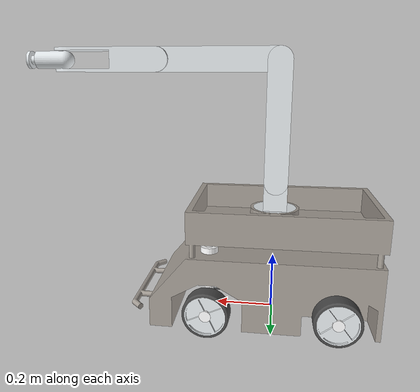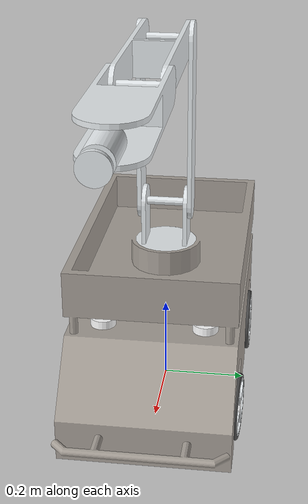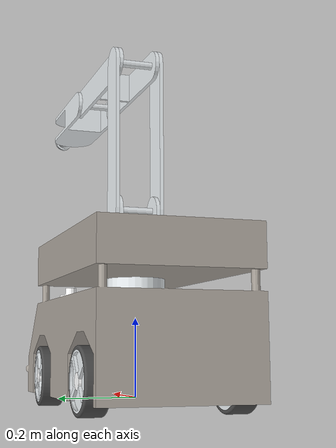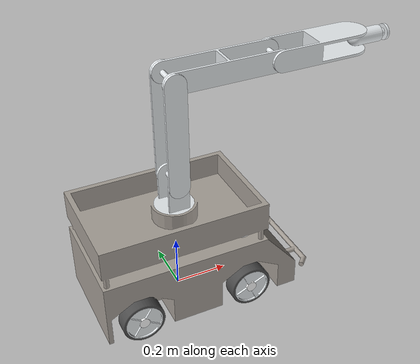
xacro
<?xml version="1.0"?>
<!-- Name your robot here -->
<robot name ="navbot" xmlns:xacro="http://wiki.ros.org/xacro">
	<!-- Include Robot's urdf filepath -->
	<xacro:include filename="$(find navbot)/urdf/navbot.urdf" />

	<!-- Add gazebo plugin for control here -->
	<gazebo>
		<plugin name="gazebo_ros_control" filename="libgazebo_ros_control.so">
			<robotNamespace>/navbot_control</robotNamespace>
			<robotSimType>gazebo_ros_control/DefaultRobotHWSim</robotSimType>
			<legacyModeNS>true</legacyModeNS>
		</plugin>
	</gazebo>
</robot>

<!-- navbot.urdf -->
<robot
  name="navbot">
  <link
    name="dummy_link">
  </link>
  <joint
    name="dummy_joint"
    type="fixed">
    <parent
      link="dummy_link"/>
    <child
      link="base_link"/>
  </joint>
  <link
    name="base_link">
    <inertial>
      <origin
        xyz="-0.00574243083162546 5.54009732590054E-09 0.169890254484883"
        rpy="0 0 0" />
      <mass
        value="422.822492059331" />
      <inertia
        ixx="9.55044189975523"
        ixy="-8.55585388996705E-07"
        ixz="0.740883638540849"
        iyy="22.1577975837696"
        iyz="-2.09095170490729E-07"
        izz="23.9989027352956" />
    </inertial>
    <visual>
      <origin
        xyz="0 0 0"
        rpy="0 0 0" />
      <geometry>
        <mesh
          filename="package://navbot/meshes/base_link.STL" />
      </geometry>
      <material
        name="">
        <color
          rgba="0.647058823529412 0.619607843137255 0.588235294117647 1" />
      </material>
    </visual>
    <collision>
      <origin
        xyz="0 0 0"
        rpy="0 0 0" />
      <geometry>
        <mesh
          filename="package://navbot/meshes/base_link.STL" />
      </geometry>
    </collision>
  </link>
  <gazebo reference="base_link">
    <material>Gazebo/Yellow</material>
  </gazebo>
  <link
    name="link_rear_axle">
    <inertial>
      <origin
        xyz="2.77555756156289E-17 0 7.26920691213685E-17"
        rpy="0 0 0" />
      <mass
        value="0.536835352645424" />
      <inertia
        ixx="0.00813515260567443"
        ixy="0"
        ixz="1.55401301601405E-21"
        iyy="0.00813515260567443"
        iyz="-9.04327428095806E-21"
        izz="6.33297955073898E-05" />
    </inertial>
    <visual>
      <origin
        xyz="0 0 0"
        rpy="0 0 0" />
      <geometry>
        <mesh
          filename="package://navbot/meshes/link_rear_axle.STL" />
      </geometry>
      <material
        name="">
        <color
          rgba="1 1 1 1" />
      </material>
    </visual>
    <collision>
      <origin
        xyz="0 0 0"
        rpy="0 0 0" />
      <geometry>
        <mesh
          filename="package://navbot/meshes/link_rear_axle.STL" />
      </geometry>
    </collision>
  </link>
  <gazebo reference="link_rear_axle">
    <material>Gazebo/Yellow</material>
  </gazebo>
  <joint
    name="joint_rear_axle"
    type="continuous">
    <origin
      xyz="-0.215 0 0.05"
      rpy="-1.5708 -0.40054 3.1416" />
    <parent
      link="base_link" />
    <child
      link="link_rear_axle" />
    <axis
      xyz="0 0 1" />
  </joint>
  <link
    name="link_rear_left_rim">
    <inertial>
      <origin
        xyz="0.04759900699422 2.77555756156289E-17 0"
        rpy="0 0 0" />
      <mass
        value="2.17989779228773" />
      <inertia
        ixx="0.00563923087829547"
        ixy="1.40523402635537E-19"
        ixz="3.57695924424167E-19"
        iyy="0.00338250938278668"
        iyz="1.51788304147971E-18"
        izz="0.00338250938278667" />
    </inertial>
    <visual>
      <origin
        xyz="0 0 0"
        rpy="0 0 0" />
      <geometry>
        <mesh
          filename="package://navbot/meshes/link_rear_left_rim.STL" />
      </geometry>
      <material
        name="">
        <color
          rgba="0.898039215686275 0.917647058823529 0.929411764705882 1" />
      </material>
    </visual>
    <collision>
      <origin
        xyz="0 0 0"
        rpy="0 0 0" />
      <geometry>
        <mesh
          filename="package://navbot/meshes/link_rear_left_rim.STL" />
      </geometry>
    </collision>
  </link>
  <gazebo reference="link_rear_left_rim">
    <material>Gazebo/Yellow</material>
  </gazebo>
  <joint
    name="joint_rear_left_rim"
    type="fixed">
    <origin
      xyz="0 0 -0.1275"
      rpy="1.3999 1.5708 0" />
    <parent
      link="link_rear_axle" />
    <child
      link="link_rear_left_rim" />
    <axis
      xyz="0 0 0" />
  </joint>
  <link
    name="link_rear_left_tyre">
    <inertial>
      <origin
        xyz="-5.55111512312578E-17 -1.38777878078145E-17 0.03"
        rpy="0 0 0" />
      <mass
        value="0.277425102785401" />
      <inertia
        ixx="0.000862580097775627"
        ixy="-5.42101086242752E-20"
        ixz="-1.14800709425822E-19"
        iyy="0.000862580097775628"
        iyz="6.71629079765894E-21"
        izz="0.00156439289169361" />
    </inertial>
    <visual>
      <origin
        xyz="0 0 0"
        rpy="0 0 0" />
      <geometry>
        <mesh
          filename="package://navbot/meshes/link_rear_left_tyre.STL" />
      </geometry>
      <material
        name="">
        <color
          rgba="0.298039215686275 0.298039215686275 0.298039215686275 1" />
      </material>
    </visual>
    <collision>
      <origin
        xyz="0 0 0"
        rpy="0 0 0" />
      <geometry>
        <mesh
          filename="package://navbot/meshes/link_rear_left_tyre.STL" />
      </geometry>
    </collision>
  </link>
  <gazebo reference="link_rear_left_tyre">
    <material>Gazebo/Black</material>
  </gazebo>
  <joint
    name="joint_rear_left_tyre"
    type="fixed">
    <origin
      xyz="0.08 0 0"
      rpy="-1.5708 -0.15555 1.5708" />
    <parent
      link="link_rear_left_rim" />
    <child
      link="link_rear_left_tyre" />
    <axis
      xyz="0 0 0" />
  </joint>
  <link
    name="link_rear_right_rim">
    <inertial>
      <origin
        xyz="0.0475990069942199 0 0"
        rpy="0 0 0" />
      <mass
        value="2.17989779228773" />
      <inertia
        ixx="0.00563923087829547"
        ixy="5.18143569753106E-20"
        ixz="4.02635771702536E-19"
        iyy="0.00338250938278668"
        iyz="1.73472347597681E-18"
        izz="0.00338250938278668" />
    </inertial>
    <visual>
      <origin
        xyz="0 0 0"
        rpy="0 0 0" />
      <geometry>
        <mesh
          filename="package://navbot/meshes/link_rear_right_rim.STL" />
      </geometry>
      <material
        name="">
        <color
          rgba="0.898039215686275 0.917647058823529 0.929411764705882 1" />
      </material>
    </visual>
    <collision>
      <origin
        xyz="0 0 0"
        rpy="0 0 0" />
      <geometry>
        <mesh
          filename="package://navbot/meshes/link_rear_right_rim.STL" />
      </geometry>
    </collision>
  </link>
  <gazebo reference="link_rear_right_rim">
    <material>Gazebo/Yellow</material>
  </gazebo>
  <joint
    name="joint_rear_right_rim"
    type="fixed">
    <origin
      xyz="0 0 0.1275"
      rpy="0.97783 -1.5708 0" />
    <parent
      link="link_rear_axle" />
    <child
      link="link_rear_right_rim" />
    <axis
      xyz="0 0 0" />
  </joint>
  <link
    name="link_rear_right_tyre">
    <inertial>
      <origin
        xyz="0 2.77555756156289E-17 0.03"
        rpy="0 0 0" />
      <mass
        value="0.277425102785401" />
      <inertia
        ixx="0.000862580097775628"
        ixy="0"
        ixz="-1.13973500776398E-19"
        iyy="0.000862580097775628"
        iyz="-1.53085782332388E-20"
        izz="0.00156439289169361" />
    </inertial>
    <visual>
      <origin
        xyz="0 0 0"
        rpy="0 0 0" />
      <geometry>
        <mesh
          filename="package://navbot/meshes/link_rear_right_tyre.STL" />
      </geometry>
      <material
        name="">
        <color
          rgba="0.298039215686275 0.298039215686275 0.298039215686275 1" />
      </material>
    </visual>
    <collision>
      <origin
        xyz="0 0 0"
        rpy="0 0 0" />
      <geometry>
        <mesh
          filename="package://navbot/meshes/link_rear_right_tyre.STL" />
      </geometry>
    </collision>
  </link>
  <gazebo reference="link_rear_right_tyre">
    <material>Gazebo/Black</material>
  </gazebo>
  <joint
    name="joint_rear_right_tyre"
    type="fixed">
    <origin
      xyz="0.02 0 0"
      rpy="-1.5708 0.074591 -1.5708" />
    <parent
      link="link_rear_right_rim" />
    <child
      link="link_rear_right_tyre" />
    <axis
      xyz="0 0 0" />
  </joint>
  <link
    name="link_front_left_axle">
    <inertial>
      <origin
        xyz="1.10891879540054E-07 0.125024005469989 -0.0107604411422391"
        rpy="0 0 0" />
      <mass
        value="0.49495776580367" />
      <inertia
        ixx="0.0039900101683786"
        ixy="-1.2390557473812E-10"
        ixz="-4.2801510396367E-11"
        iyy="0.000358959536469292"
        iyz="-0.000559352144239239"
        izz="0.00372216577421488" />
    </inertial>
    <visual>
      <origin
        xyz="0 0 0"
        rpy="0 0 0" />
      <geometry>
        <mesh
          filename="package://navbot/meshes/link_front_left_axle.STL" />
      </geometry>
      <material
        name="">
        <color
          rgba="1 1 1 1" />
      </material>
    </visual>
    <collision>
      <origin
        xyz="0 0 0"
        rpy="0 0 0" />
      <geometry>
        <mesh
          filename="package://navbot/meshes/link_front_left_axle.STL" />
      </geometry>
    </collision>
  </link>
  <gazebo reference="link_front_left_axle">
    <material>Gazebo/Yellow</material>
  </gazebo>
  <joint
    name="joint_front_left_axle"
    type="continuous">
    <origin
      xyz="0.215 0.12 0.03"
      rpy="1.5708 0 -0.052539" />
    <parent
      link="base_link" />
    <child
      link="link_front_left_axle" />
    <axis
      xyz="0 1 0" />
  </joint>
  <link
    name="link_front_left_rim">
    <inertial>
      <origin
        xyz="0.04759900699422 -5.55111512312578E-17 1.38777878078145E-17"
        rpy="0 0 0" />
      <mass
        value="2.17989779228773" />
      <inertia
        ixx="0.00563923087829547"
        ixy="4.87890977618477E-19"
        ixz="-4.06575814682064E-20"
        iyy="0.00338250938278667"
        iyz="9.2877162666434E-19"
        izz="0.00338250938278668" />
    </inertial>
    <visual>
      <origin
        xyz="0 0 0"
        rpy="0 0 0" />
      <geometry>
        <mesh
          filename="package://navbot/meshes/link_front_left_rim.STL" />
      </geometry>
      <material
        name="">
        <color
          rgba="0.898039215686275 0.917647058823529 0.929411764705882 1" />
      </material>
    </visual>
    <collision>
      <origin
        xyz="0 0 0"
        rpy="0 0 0" />
      <geometry>
        <mesh
          filename="package://navbot/meshes/link_front_left_rim.STL" />
      </geometry>
    </collision>
  </link>
  <gazebo reference="link_front_left_rim">
    <material>Gazebo/Yellow</material>
  </gazebo>
  <joint
    name="joint_front_left_rim"
    type="continuous">
    <origin
      xyz="0 0.02 -0.0075"
      rpy="0 1.5708 2.6779" />
    <parent
      link="link_front_left_axle" />
    <child
      link="link_front_left_rim" />
    <axis
      xyz="1 0 0" />
  </joint>
  <link
    name="link_front_left_tyre">
    <inertial>
      <origin
        xyz="2.77555756156289E-17 -2.77555756156289E-17 0.03"
        rpy="0 0 0" />
      <mass
        value="0.277425102785401" />
      <inertia
        ixx="0.000862580097775627"
        ixy="9.01031297641762E-20"
        ixz="8.94466792300541E-19"
        iyy="0.000862580097775627"
        iyz="-8.48727013148809E-19"
        izz="0.00156439289169361" />
    </inertial>
    <visual>
      <origin
        xyz="0 0 0"
        rpy="0 0 0" />
      <geometry>
        <mesh
          filename="package://navbot/meshes/link_front_left_tyre.STL" />
      </geometry>
      <material
        name="">
        <color
          rgba="0.298039215686275 0.298039215686275 0.298039215686275 1" />
      </material>
    </visual>
    <collision>
      <origin
        xyz="0 0 0"
        rpy="0 0 0" />
      <geometry>
        <mesh
          filename="package://navbot/meshes/link_front_left_tyre.STL" />
      </geometry>
    </collision>
  </link>
  <gazebo reference="link_front_left_tyre">
    <material>Gazebo/Black</material>
  </gazebo>
  <joint
    name="joint_front_left_tyre"
    type="fixed">
    <origin
      xyz="0.08 0 0"
      rpy="-1.5708 -1.2338 1.5708" />
    <parent
      link="link_front_left_rim" />
    <child
      link="link_front_left_tyre" />
    <axis
      xyz="0 0 0" />
  </joint>
  <link
    name="link_front_right_axle">
    <inertial>
      <origin
        xyz="2.59269704983023E-07 0.125024021675921 -0.010760430046453"
        rpy="0 0 0" />
      <mass
        value="0.494957686734281" />
      <inertia
        ixx="0.00399001010542706"
        ixy="2.58863452849418E-10"
        ixz="5.00785754858001E-11"
        iyy="0.000358959532065348"
        iyz="-0.000559352107853414"
        izz="0.00372216571421861" />
    </inertial>
    <visual>
      <origin
        xyz="0 0 0"
        rpy="0 0 0" />
      <geometry>
        <mesh
          filename="package://navbot/meshes/link_front_right_axle.STL" />
      </geometry>
      <material
        name="">
        <color
          rgba="1 1 1 1" />
      </material>
    </visual>
    <collision>
      <origin
        xyz="0 0 0"
        rpy="0 0 0" />
      <geometry>
        <mesh
          filename="package://navbot/meshes/link_front_right_axle.STL" />
      </geometry>
    </collision>
  </link>
  <gazebo reference="link_front_right_axle">
    <material>Gazebo/Yellow</material>
  </gazebo>
  <joint
    name="joint_front_right_axle"
    type="continuous">
    <origin
      xyz="0.215 -0.12 0.03"
      rpy="1.5708 0 -3.1269" />
    <parent
      link="base_link" />
    <child
      link="link_front_right_axle" />
    <axis
      xyz="0 1 0" />
  </joint>
  <link
    name="link_front_right_rim">
    <inertial>
      <origin
        xyz="0.04759900699422 -5.55111512312578E-17 8.32667268468867E-17"
        rpy="0 0 0" />
      <mass
        value="2.17989779228773" />
      <inertia
        ixx="0.00563923087829547"
        ixy="-8.77526133355455E-19"
        ixz="2.92056960213283E-18"
        iyy="0.00338250938278667"
        iyz="4.84396966711053E-20"
        izz="0.00338250938278668" />
    </inertial>
    <visual>
      <origin
        xyz="0 0 0"
        rpy="0 0 0" />
      <geometry>
        <mesh
          filename="package://navbot/meshes/link_front_right_rim.STL" />
      </geometry>
      <material
        name="">
        <color
          rgba="0.898039215686275 0.917647058823529 0.929411764705882 1" />
      </material>
    </visual>
    <collision>
      <origin
        xyz="0 0 0"
        rpy="0 0 0" />
      <geometry>
        <mesh
          filename="package://navbot/meshes/link_front_right_rim.STL" />
      </geometry>
    </collision>
  </link>
  <gazebo reference="link_front_right_rim">
    <material>Gazebo/Yellow</material>
  </gazebo>
  <joint
    name="joint_front_right_rim"
    type="continuous">
    <origin
      xyz="0 0.02 -0.00749999999999999"
      rpy="0.400955617368748 1.5707963267949 0" />
    <parent
      link="link_front_right_axle" />
    <child
      link="link_front_right_rim" />
    <axis
      xyz="1 0 0" />
  </joint>
  <link
    name="link_front_right_tyre">
    <inertial>
      <origin
        xyz="0 -2.77555756156289E-17 0.03"
        rpy="0 0 0" />
      <mass
        value="0.277425102785402" />
      <inertia
        ixx="0.00086258009777563"
        ixy="5.50670677388802E-20"
        ixz="-6.70850094225406E-19"
        iyy="0.00086258009777563"
        iyz="-4.39186583151355E-19"
        izz="0.00156439289169361" />
    </inertial>
    <visual>
      <origin
        xyz="0 0 0"
        rpy="0 0 0" />
      <geometry>
        <mesh
          filename="package://navbot/meshes/link_front_right_tyre.STL" />
      </geometry>
      <material
        name="">
        <color
          rgba="0.298039215686275 0.298039215686275 0.298039215686275 1" />
      </material>
    </visual>
    <collision>
      <origin
        xyz="0 0 0"
        rpy="0 0 0" />
      <geometry>
        <mesh
          filename="package://navbot/meshes/link_front_right_tyre.STL" />
      </geometry>
    </collision>
  </link>
  <gazebo reference="link_front_right_tyre">
    <material>Gazebo/Black</material>
  </gazebo>
  <joint
    name="joint_front_right_tyre"
    type="fixed">
    <origin
      xyz="0.02 0 0"
      rpy="1.5707963267949 0.844055022272718 1.5707963267949" />
    <parent
      link="link_front_right_rim" />
    <child
      link="link_front_right_tyre" />
    <axis
      xyz="0 0 0" />
  </joint>
  <link
    name="link_1">
    <inertial>
      <origin
        xyz="8.23467233947929E-19 0.0993386761017062 -1.69688700924841E-19"
        rpy="0 0 0" />
      <mass
        value="9.1390811190568" />
      <inertia
        ixx="0.0487965981021645"
        ixy="-1.27348713913367E-18"
        ixz="1.1069427670884E-19"
        iyy="0.0258204077918584"
        iyz="-1.18619606999968E-18"
        izz="0.0498938056035688" />
    </inertial>
    <visual>
      <origin
        xyz="0 0 0"
        rpy="0 0 0" />
      <geometry>
        <mesh
          filename="package://navbot/meshes/link_1.STL" />
      </geometry>
      <material
        name="">
        <color
          rgba="0.898039215686275 0.917647058823529 0.929411764705882 1" />
      </material>
    </visual>
    <collision>
      <origin
        xyz="0 0 0"
        rpy="0 0 0" />
      <geometry>
        <mesh
          filename="package://navbot/meshes/link_1.STL" />
      </geometry>
    </collision>
  </link>
  <gazebo reference="link_1">
    <material>Gazebo/Orange</material>
  </gazebo>
  <joint
    name="joint_1"
    type="continuous">
    <origin
      xyz="0 0 0.2"
      rpy="1.5708 0 1.5708" />
    <parent
      link="base_link" />
    <child
      link="link_1" />
    <axis
      xyz="0 1 0" />
  </joint>
  <link
    name="link_2">
    <inertial>
      <origin
        xyz="4.21468486042182E-09 0.200000000000001 4.49816509197686E-17"
        rpy="0 0 0" />
      <mass
        value="2.18604420889339" />
      <inertia
        ixx="0.0443530457701329"
        ixy="-7.56860847114201E-10"
        ixz="-5.47156987570897E-20"
        iyy="0.00843762732486857"
        iyz="-4.50781791324572E-18"
        izz="0.0507209956806042" />
    </inertial>
    <visual>
      <origin
        xyz="0 0 0"
        rpy="0 0 0" />
      <geometry>
        <mesh
          filename="package://navbot/meshes/link_2.STL" />
      </geometry>
      <material
        name="">
        <color
          rgba="0.898039215686275 0.917647058823529 0.929411764705882 1" />
      </material>
    </visual>
    <collision>
      <origin
        xyz="0 0 0"
        rpy="0 0 0" />
      <geometry>
        <mesh
          filename="package://navbot/meshes/link_2.STL" />
      </geometry>
    </collision>
  </link>
  <gazebo reference="link_2">
    <material>Gazebo/Orange</material>
  </gazebo>
  <joint
    name="joint_2"
    type="continuous">
    <origin
      xyz="0 0.28 0"
      rpy="-3.1416 0 3.1416" />
    <parent
      link="link_1" />
    <child
      link="link_2" />
    <axis
      xyz="1 0 0" />
  </joint>
  <link
    name="link_3">
    <inertial>
      <origin
        xyz="-5.68294713632741E-17 -0.2 -6.66133814775094E-16"
        rpy="0 0 0" />
      <mass
        value="2.15990440461139" />
      <inertia
        ixx="0.0356257266086387"
        ixy="-2.09248611707827E-17"
        ixz="2.3123943074961E-17"
        iyy="0.00619436542699183"
        iyz="2.81764908551687E-18"
        izz="0.0395540816114473" />
    </inertial>
    <visual>
      <origin
        xyz="0 0 0"
        rpy="0 0 0" />
      <geometry>
        <mesh
          filename="package://navbot/meshes/link_3.STL" />
      </geometry>
      <material
        name="">
        <color
          rgba="0.898039215686275 0.917647058823529 0.929411764705882 1" />
      </material>
    </visual>
    <collision>
      <origin
        xyz="0 0 0"
        rpy="0 0 0" />
      <geometry>
        <mesh
          filename="package://navbot/meshes/link_3.STL" />
      </geometry>
    </collision>
  </link>
  <gazebo reference="link_3">
    <material>Gazebo/Orange</material>
  </gazebo>
  <joint
    name="joint_3"
    type="continuous">
    <origin
      xyz="0 0.4 0"
      rpy="1.5708 0 0" />
    <parent
      link="link_2" />
    <child
      link="link_3" />
    <axis
      xyz="1 0 0" />
  </joint>
  <link
    name="link_4">
    <inertial>
      <origin
        xyz="-5.91118618588781E-15 -0.17623526729091 9.99200722162641E-16"
        rpy="0 0 0" />
      <mass
        value="2.5633930873931" />
      <inertia
        ixx="0.0324934459369349"
        ixy="4.1372114099417E-17"
        ixz="2.43119914274586E-17"
        iyy="0.00730600107061401"
        iyz="-4.17674835796458E-17"
        izz="0.035293174970927" />
    </inertial>
    <visual>
      <origin
        xyz="0 0 0"
        rpy="0 0 0" />
      <geometry>
        <mesh
          filename="package://navbot/meshes/link_4.STL" />
      </geometry>
      <material
        name="">
        <color
          rgba="0.898039215686275 0.917647058823529 0.929411764705882 1" />
      </material>
    </visual>
    <collision>
      <origin
        xyz="0 0 0"
        rpy="0 0 0" />
      <geometry>
        <mesh
          filename="package://navbot/meshes/link_4.STL" />
      </geometry>
    </collision>
  </link>
  <gazebo reference="link_4">
    <material>Gazebo/Orange</material>
  </gazebo>
  <joint
    name="joint_4"
    type="continuous">
    <origin
      xyz="0 -0.4 0"
      rpy="0 0 0" />
    <parent
      link="link_3" />
    <child
      link="link_4" />
    <axis
      xyz="1 0 0" />
  </joint>
  <link
    name="link_5">
    <inertial>
      <origin
        xyz="-3.47105544721201E-08 0.0235907129380932 -6.89973345124884E-09"
        rpy="0 0 0" />
      <mass
        value="0.741865788464824" />
      <inertia
        ixx="0.00106142107943006"
        ixy="-4.44545174493104E-10"
        ixz="1.64486245796405E-10"
        iyy="0.000356591742403898"
        iyz="-4.49525952452804E-10"
        izz="0.00107482191696341" />
    </inertial>
    <visual>
      <origin
        xyz="0 0 0"
        rpy="0 0 0" />
      <geometry>
        <mesh
          filename="package://navbot/meshes/link_5.STL" />
      </geometry>
      <material
        name="">
        <color
          rgba="0.898039215686275 0.917647058823529 0.929411764705882 1" />
      </material>
    </visual>
    <collision>
      <origin
        xyz="0 0 0"
        rpy="0 0 0" />
      <geometry>
        <mesh
          filename="package://navbot/meshes/link_5.STL" />
      </geometry>
    </collision>
  </link>
  <gazebo reference="link_5">
    <material>Gazebo/Orange</material>
  </gazebo>
  <joint
    name="joint_5"
    type="continuous">
    <origin
      xyz="0 -0.345 0"
      rpy="0 0 -3.14159" />
    <parent
      link="link_4" />
    <child
      link="link_5" />
    <axis
      xyz="0 0 1" />
  </joint>
  <link
    name="link_end_effector">
    <inertial>
      <origin
        xyz="1.11022302462516E-15 0.0372 -5.44009282066327E-15"
        rpy="0 0 0" />
      <mass
        value="0.238564692131974" />
      <inertia
        ixx="0.000169155686583547"
        ixy="7.6598960407846E-21"
        ixz="0"
        iyy="6.46808521542814E-05"
        iyz="-1.04339855432807E-20"
        izz="0.000169155686583547" />
    </inertial>
    <visual>
      <origin
        xyz="0 0 0"
        rpy="0 0 0" />
      <geometry>
        <mesh
          filename="package://navbot/meshes/link_end_effector.STL" />
      </geometry>
      <material
        name="">
        <color
          rgba="0.898039215686275 0.917647058823529 0.929411764705882 1" />
      </material>
    </visual>
    <collision>
      <origin
        xyz="0 0 0"
        rpy="0 0 0" />
      <geometry>
        <mesh
          filename="package://navbot/meshes/link_end_effector.STL" />
      </geometry>
    </collision>
  </link>
  <gazebo reference="link_end_effector">
    <material>Gazebo/Green</material>
  </gazebo>
  <joint
    name="joint_end_effector"
    type="continuous">
    <origin
      xyz="0 0.048 0"
      rpy="0 -1.355 0" />
    <parent
      link="link_5" />
    <child
      link="link_end_effector" />
    <axis
      xyz="0 1 0" />
  </joint>
  <transmission name="trans1">
    <type>transmission_interface/SimpleTransmission</type>
    <joint name="joint_rear_axle">
      <hardwareInterface>hardware_interface/EffortJointInterface</hardwareInterface>
    </joint>
    <actuator name="Engine">
      <hardwareInterface>hardware_interface/EffortJointInterface</hardwareInterface>
      <mechanicalReduction>1</mechanicalReduction>
    </actuator>
  </transmission>
  <transmission name="trans2">
    <type>transmission_interface/SimpleTransmission</type>
    <joint name="joint_front_left_axle">
      <hardwareInterface>hardware_interface/PositionJointInterface</hardwareInterface>
    </joint>
    <actuator name="F_L_motor">
      <hardwareInterface>hardware_interface/PositionJointInterface</hardwareInterface>
      <mechanicalReduction>1</mechanicalReduction>
    </actuator>
  </transmission>
  <transmission name="trans3">
    <type>transmission_interface/SimpleTransmission</type>
    <joint name="joint_front_right_axle">
      <hardwareInterface>hardware_interface/PositionJointInterface</hardwareInterface>
    </joint>
    <actuator name="F_R_motor">
      <hardwareInterface>hardware_interface/PositionJointInterface</hardwareInterface>
      <mechanicalReduction>1</mechanicalReduction>
    </actuator>
  </transmission>
  <transmission name="trans4">
    <type>transmission_interface/SimpleTransmission</type>
    <joint name="joint_1">
      <hardwareInterface>hardware_interface/PositionJointInterface</hardwareInterface>
    </joint>
    <actuator name="joint_1_motor">
      <hardwareInterface>hardware_interface/PositionJointInterface</hardwareInterface>
      <mechanicalReduction>1</mechanicalReduction>
    </actuator>
  </transmission>
  <transmission name="trans5">
    <type>transmission_interface/SimpleTransmission</type>
    <joint name="joint_2">
      <hardwareInterface>hardware_interface/PositionJointInterface</hardwareInterface>
    </joint>
    <actuator name="joint_2_motor">
      <hardwareInterface>hardware_interface/PositionJointInterface</hardwareInterface>
      <mechanicalReduction>1</mechanicalReduction>
    </actuator>
  </transmission>
  <transmission name="trans6">
    <type>transmission_interface/SimpleTransmission</type>
    <joint name="joint_3">
      <hardwareInterface>hardware_interface/PositionJointInterface</hardwareInterface>
    </joint>
    <actuator name="joint_3_motor">
      <hardwareInterface>hardware_interface/PositionJointInterface</hardwareInterface>
      <mechanicalReduction>1</mechanicalReduction>
    </actuator>
  </transmission>
  <transmission name="trans7">
    <type>transmission_interface/SimpleTransmission</type>
    <joint name="joint_4">
      <hardwareInterface>hardware_interface/PositionJointInterface</hardwareInterface>
    </joint>
    <actuator name="joint_4_motor">
      <hardwareInterface>hardware_interface/PositionJointInterface</hardwareInterface>
      <mechanicalReduction>1</mechanicalReduction>
    </actuator>
  </transmission>
    <transmission name="trans8">
    <type>transmission_interface/SimpleTransmission</type>
    <joint name="joint_5">
      <hardwareInterface>hardware_interface/PositionJointInterface</hardwareInterface>
    </joint>
    <actuator name="joint_5_motor">
      <hardwareInterface>hardware_interface/PositionJointInterface</hardwareInterface>
      <mechanicalReduction>1</mechanicalReduction>
    </actuator>
  </transmission>
  <transmission name="trans9">
    <type>transmission_interface/SimpleTransmission</type>
    <joint name="joint_end_effector">
      <hardwareInterface>hardware_interface/PositionJointInterface</hardwareInterface>
    </joint>
    <actuator name="end_effector_motor">
      <hardwareInterface>hardware_interface/PositionJointInterface</hardwareInterface>
      <mechanicalReduction>1</mechanicalReduction>
    </actuator>
  </transmission>
  <transmission name="trans10">
    <type>transmission_interface/SimpleTransmission</type>
    <joint name="joint_front_left_rim">
      <hardwareInterface>hardware_interface/EffortJointInterface</hardwareInterface>
    </joint>
    <actuator name="Engine1">
      <hardwareInterface>hardware_interface/EffortJointInterface</hardwareInterface>
      <mechanicalReduction>1</mechanicalReduction>
    </actuator>
  </transmission>
  <transmission name="trans11">
    <type>transmission_interface/SimpleTransmission</type>
    <joint name="joint_front_right_rim">
      <hardwareInterface>hardware_interface/EffortJointInterface</hardwareInterface>
    </joint>
    <actuator name="Engine2">
      <hardwareInterface>hardware_interface/EffortJointInterface</hardwareInterface>
      <mechanicalReduction>1</mechanicalReduction>
    </actuator>
  </transmission>
</robot>
